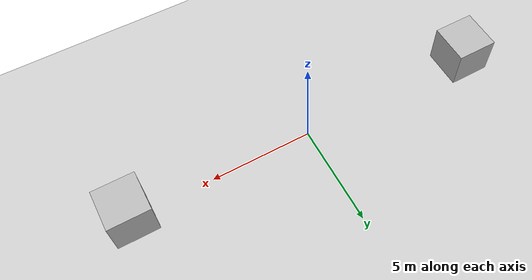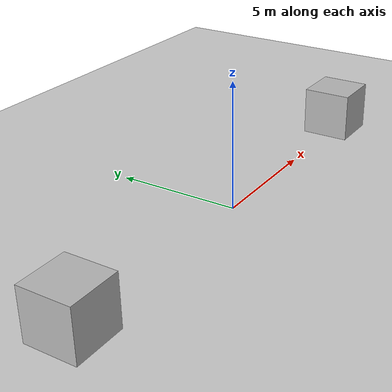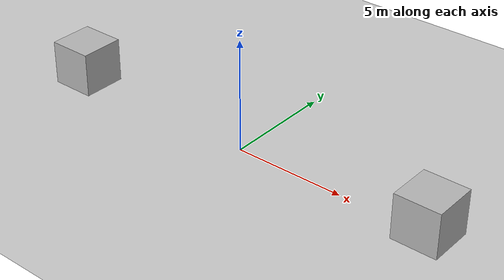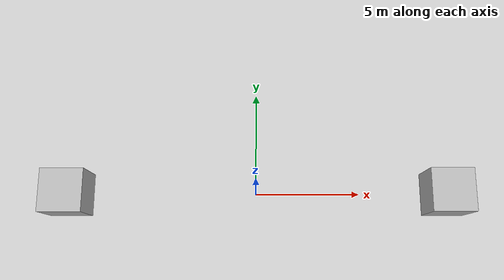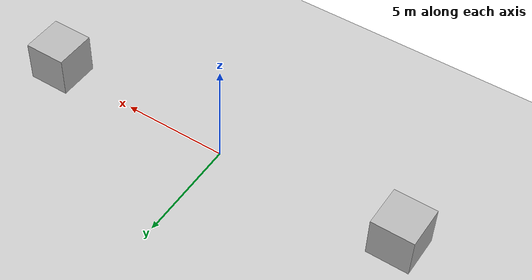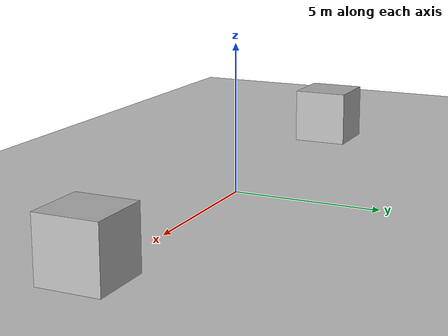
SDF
<sdf version="1.6">
 <world name="default">
  <light name="sun" type="directional">
   <pose>0 0 10 0 -0 0</pose>
   <diffuse>0.8 0.8 0.8 1</diffuse>
   <specular>0.2 0.2 0.2 1</specular>
   <attenuation>
    <range>1000</range>
    <constant>0.9</constant>
    <linear>0.01</linear>
    <quadratic>0.001</quadratic>
   </attenuation>
   <direction>-0.5 0.1 -0.9</direction>
  </light>
  <model name="ground_plane">
   <static>1</static>
   <link name="link">
    <collision name="collision">
     <geometry><plane><normal>0 0 1</normal><size>100 100</size></plane></geometry>
     <surface><friction><ode><mu>100</mu><mu2>50</mu2></ode></friction></surface>
    </collision>
    <visual name="visual">
     <cast_shadows>0</cast_shadows>
     <geometry><plane><normal>0 0 1</normal><size>100 100</size></plane></geometry>
     <material>
      <script><uri>file://media/materials/scripts/gazebo.material</uri><name>Gazebo/Grey</name></script>
     </material>
    </visual>
    <velocity_decay><linear>0</linear><angular>0</angular></velocity_decay>
   </link>
  </model>
  <physics name="default_physics" default="0" type="ode">
   <max_step_size>0.001</max_step_size>
   <real_time_factor>1</real_time_factor>
   <real_time_update_rate>1000</real_time_update_rate>
  </physics>
  <scene><ambient>0.4 0.4 0.4 1</ambient><background>0.7 0.7 0.7 1</background><shadows>1</shadows></scene>
  <spherical_coordinates>
   <surface_model>EARTH_WGS84</surface_model>
   <latitude_deg>0</latitude_deg>
   <longitude_deg>0</longitude_deg>
   <elevation>0</elevation>
   <heading_deg>0</heading_deg>
  </spherical_coordinates>
  <gravity>0 0 -9.8</gravity>
  <magnetic_field>6e-06 2.3e-05 -4.2e-05</magnetic_field>
  <atmosphere type="adiabatic"/>
  <model name="(DS) Cube">
   <static>0</static>
   <link name="link">
    <inertial>
     <pose>0 0 1 0 -0 0</pose>
     <mass>5</mass>
     <inertia><ixx>0.833</ixx><iyy>0.833</iyy><izz>0.833</izz><ixy>0</ixy><ixz>0</ixz><iyz>0</iyz></inertia>
    </inertial>
    <collision name="collision">
     <pose>0 0 1 0 -0 0</pose>
     <geometry><mesh><uri>model://ds_cube/meshes/ds_cube.dae</uri><scale>1 1 1</scale></mesh></geometry>
    </collision>
    <visual name="visual">
     <pose>0 0 1 0 -0 0</pose>
     <geometry><mesh><uri>model://ds_cube/meshes/ds_cube.dae</uri><scale>1 1 1</scale></mesh></geometry>
    </visual>
   </link>
   <pose>-8.88662 -0.019606 0 0 0 -6e-06</pose>
  </model>
  <model name="(DS) Cube_0">
   <static>0</static>
   <link name="link">
    <inertial>
     <pose>0 0 1 0 -0 0</pose>
     <mass>5</mass>
     <inertia><ixx>0.833</ixx><iyy>0.833</iyy><izz>0.833</izz><ixy>0</ixy><ixz>0</ixz><iyz>0</iyz></inertia>
    </inertial>
    <collision name="collision">
     <pose>0 0 1 0 -0 0</pose>
     <geometry><mesh><uri>model://ds_cube/meshes/ds_cube.dae</uri><scale>1 1 1</scale></mesh></geometry>
    </collision>
    <visual name="visual">
     <pose>0 0 1 0 -0 0</pose>
     <geometry><mesh><uri>model://ds_cube/meshes/ds_cube.dae</uri><scale>1 1 1</scale></mesh></geometry>
    </visual>
   </link>
   <pose>8.99092 0.013066 -4e-06 0 4e-06 -5e-06</pose>
  </model>
 </world>
</sdf>
